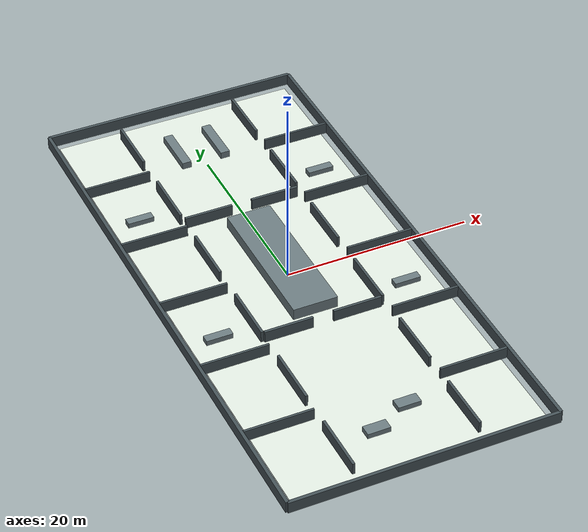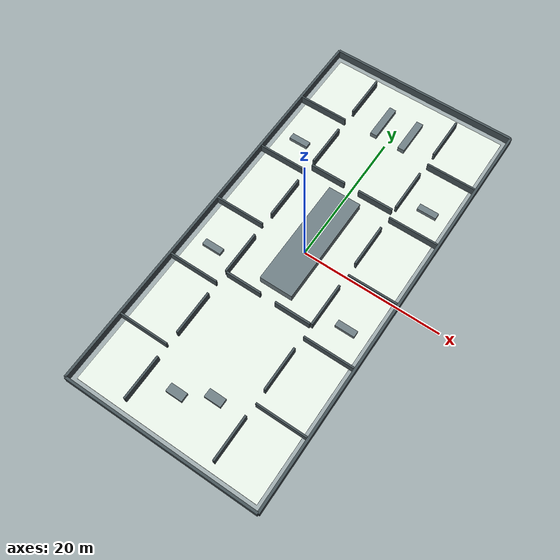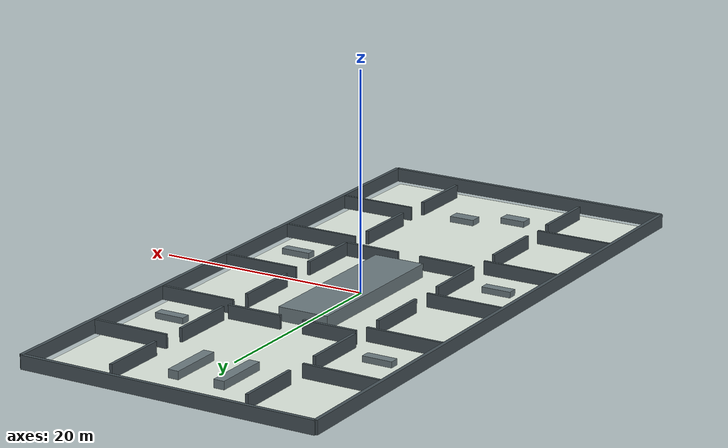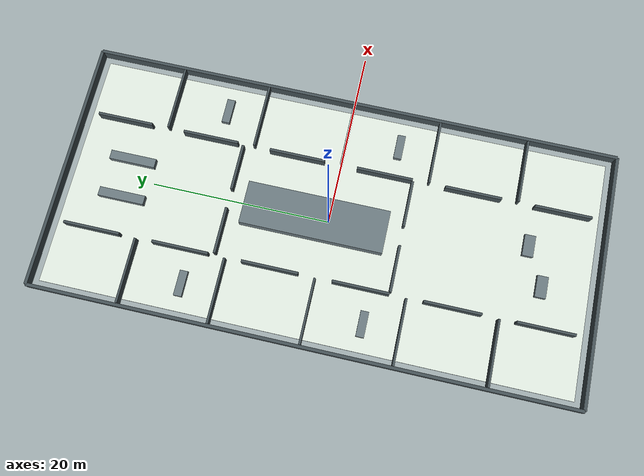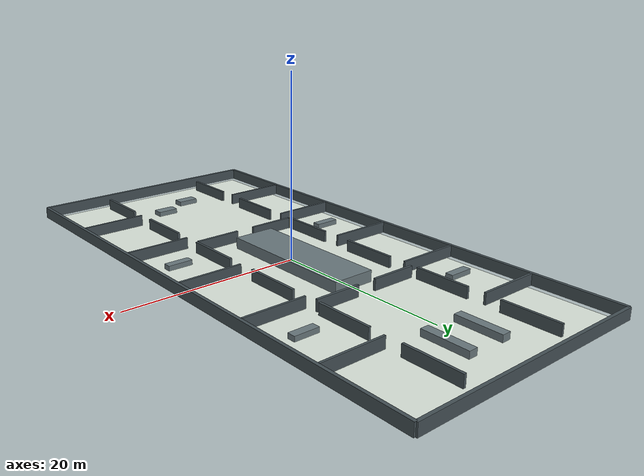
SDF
<?xml version="1.0" ?>
<sdf version="1.6">
  <world name="school_corridor">
    <gravity>0 0 -9.8</gravity>
    <scene>
      <ambient>0.65 0.65 0.65 1</ambient>
      <background>0.78 0.84 0.88 1</background>
    </scene>
    <include>
      <uri>model://sun</uri>
    </include>
    <model name="school_corridor_floor">
      <static>true</static>
      <pose>0.000 0.000 -0.025 0 0 0</pose>
      <link name="floor_link">
        <collision name="floor_collision">
          <geometry>
            <box><size>26.400 58.400 0.050</size></box>
          </geometry>
        </collision>
        <visual name="floor_visual">
          <geometry>
            <box><size>26.400 58.400 0.050</size></box>
          </geometry>
          <material><ambient>0.88 0.92 0.88 1</ambient><diffuse>0.88 0.92 0.88 1</diffuse></material>
        </visual>
      </link>
    </model>
    <model name="outer_north">
      <static>true</static>
      <pose>0.000 30.000 0.625 0 0 0</pose>
      <link name="outer_north_link">
        <collision name="outer_north_collision">
          <geometry>
            <box><size>28.000 0.350 1.250</size></box>
          </geometry>
        </collision>
        <visual name="outer_north_visual">
          <geometry>
            <box><size>28.000 0.350 1.250</size></box>
          </geometry>
          <material><ambient>0.27 0.32 0.34 1</ambient><diffuse>0.27 0.32 0.34 1</diffuse></material>
        </visual>
      </link>
    </model>
    <model name="outer_south">
      <static>true</static>
      <pose>0.000 -30.000 0.625 0 0 0</pose>
      <link name="outer_south_link">
        <collision name="outer_south_collision">
          <geometry>
            <box><size>28.000 0.350 1.250</size></box>
          </geometry>
        </collision>
        <visual name="outer_south_visual">
          <geometry>
            <box><size>28.000 0.350 1.250</size></box>
          </geometry>
          <material><ambient>0.27 0.32 0.34 1</ambient><diffuse>0.27 0.32 0.34 1</diffuse></material>
        </visual>
      </link>
    </model>
    <model name="outer_west">
      <static>true</static>
      <pose>-14.000 0.000 0.625 0 0 0</pose>
      <link name="outer_west_link">
        <collision name="outer_west_collision">
          <geometry>
            <box><size>0.350 60.000 1.250</size></box>
          </geometry>
        </collision>
        <visual name="outer_west_visual">
          <geometry>
            <box><size>0.350 60.000 1.250</size></box>
          </geometry>
          <material><ambient>0.27 0.32 0.34 1</ambient><diffuse>0.27 0.32 0.34 1</diffuse></material>
        </visual>
      </link>
    </model>
    <model name="outer_east">
      <static>true</static>
      <pose>14.000 0.000 0.625 0 0 0</pose>
      <link name="outer_east_link">
        <collision name="outer_east_collision">
          <geometry>
            <box><size>0.350 60.000 1.250</size></box>
          </geometry>
        </collision>
        <visual name="outer_east_visual">
          <geometry>
            <box><size>0.350 60.000 1.250</size></box>
          </geometry>
          <material><ambient>0.27 0.32 0.34 1</ambient><diffuse>0.27 0.32 0.34 1</diffuse></material>
        </visual>
      </link>
    </model>
    <model name="school_west_corridor_wall_1">
      <static>true</static>
      <pose>-6.500 -25.000 0.625 0 0 0</pose>
      <link name="school_west_corridor_wall_1_link">
        <collision name="school_west_corridor_wall_1_collision">
          <geometry>
            <box><size>0.280 6.300 1.250</size></box>
          </geometry>
        </collision>
        <visual name="school_west_corridor_wall_1_visual">
          <geometry>
            <box><size>0.280 6.300 1.250</size></box>
          </geometry>
          <material><ambient>0.27 0.32 0.34 1</ambient><diffuse>0.27 0.32 0.34 1</diffuse></material>
        </visual>
      </link>
    </model>
    <model name="school_west_corridor_wall_2">
      <static>true</static>
      <pose>-6.500 -15.000 0.625 0 0 0</pose>
      <link name="school_west_corridor_wall_2_link">
        <collision name="school_west_corridor_wall_2_collision">
          <geometry>
            <box><size>0.280 6.300 1.250</size></box>
          </geometry>
        </collision>
        <visual name="school_west_corridor_wall_2_visual">
          <geometry>
            <box><size>0.280 6.300 1.250</size></box>
          </geometry>
          <material><ambient>0.27 0.32 0.34 1</ambient><diffuse>0.27 0.32 0.34 1</diffuse></material>
        </visual>
      </link>
    </model>
    <model name="school_west_corridor_wall_3">
      <static>true</static>
      <pose>-6.500 -5.000 0.625 0 0 0</pose>
      <link name="school_west_corridor_wall_3_link">
        <collision name="school_west_corridor_wall_3_collision">
          <geometry>
            <box><size>0.280 6.300 1.250</size></box>
          </geometry>
        </collision>
        <visual name="school_west_corridor_wall_3_visual">
          <geometry>
            <box><size>0.280 6.300 1.250</size></box>
          </geometry>
          <material><ambient>0.27 0.32 0.34 1</ambient><diffuse>0.27 0.32 0.34 1</diffuse></material>
        </visual>
      </link>
    </model>
    <model name="school_west_corridor_wall_4">
      <static>true</static>
      <pose>-6.500 5.000 0.625 0 0 0</pose>
      <link name="school_west_corridor_wall_4_link">
        <collision name="school_west_corridor_wall_4_collision">
          <geometry>
            <box><size>0.280 6.300 1.250</size></box>
          </geometry>
        </collision>
        <visual name="school_west_corridor_wall_4_visual">
          <geometry>
            <box><size>0.280 6.300 1.250</size></box>
          </geometry>
          <material><ambient>0.27 0.32 0.34 1</ambient><diffuse>0.27 0.32 0.34 1</diffuse></material>
        </visual>
      </link>
    </model>
    <model name="school_west_corridor_wall_5">
      <static>true</static>
      <pose>-6.500 15.000 0.625 0 0 0</pose>
      <link name="school_west_corridor_wall_5_link">
        <collision name="school_west_corridor_wall_5_collision">
          <geometry>
            <box><size>0.280 6.300 1.250</size></box>
          </geometry>
        </collision>
        <visual name="school_west_corridor_wall_5_visual">
          <geometry>
            <box><size>0.280 6.300 1.250</size></box>
          </geometry>
          <material><ambient>0.27 0.32 0.34 1</ambient><diffuse>0.27 0.32 0.34 1</diffuse></material>
        </visual>
      </link>
    </model>
    <model name="school_west_corridor_wall_6">
      <static>true</static>
      <pose>-6.500 25.000 0.625 0 0 0</pose>
      <link name="school_west_corridor_wall_6_link">
        <collision name="school_west_corridor_wall_6_collision">
          <geometry>
            <box><size>0.280 6.300 1.250</size></box>
          </geometry>
        </collision>
        <visual name="school_west_corridor_wall_6_visual">
          <geometry>
            <box><size>0.280 6.300 1.250</size></box>
          </geometry>
          <material><ambient>0.27 0.32 0.34 1</ambient><diffuse>0.27 0.32 0.34 1</diffuse></material>
        </visual>
      </link>
    </model>
    <model name="school_east_corridor_wall_1">
      <static>true</static>
      <pose>6.500 -25.000 0.625 0 0 0</pose>
      <link name="school_east_corridor_wall_1_link">
        <collision name="school_east_corridor_wall_1_collision">
          <geometry>
            <box><size>0.280 6.300 1.250</size></box>
          </geometry>
        </collision>
        <visual name="school_east_corridor_wall_1_visual">
          <geometry>
            <box><size>0.280 6.300 1.250</size></box>
          </geometry>
          <material><ambient>0.27 0.32 0.34 1</ambient><diffuse>0.27 0.32 0.34 1</diffuse></material>
        </visual>
      </link>
    </model>
    <model name="school_east_corridor_wall_2">
      <static>true</static>
      <pose>6.500 -15.000 0.625 0 0 0</pose>
      <link name="school_east_corridor_wall_2_link">
        <collision name="school_east_corridor_wall_2_collision">
          <geometry>
            <box><size>0.280 6.300 1.250</size></box>
          </geometry>
        </collision>
        <visual name="school_east_corridor_wall_2_visual">
          <geometry>
            <box><size>0.280 6.300 1.250</size></box>
          </geometry>
          <material><ambient>0.27 0.32 0.34 1</ambient><diffuse>0.27 0.32 0.34 1</diffuse></material>
        </visual>
      </link>
    </model>
    <model name="school_east_corridor_wall_3">
      <static>true</static>
      <pose>6.500 -5.000 0.625 0 0 0</pose>
      <link name="school_east_corridor_wall_3_link">
        <collision name="school_east_corridor_wall_3_collision">
          <geometry>
            <box><size>0.280 6.300 1.250</size></box>
          </geometry>
        </collision>
        <visual name="school_east_corridor_wall_3_visual">
          <geometry>
            <box><size>0.280 6.300 1.250</size></box>
          </geometry>
          <material><ambient>0.27 0.32 0.34 1</ambient><diffuse>0.27 0.32 0.34 1</diffuse></material>
        </visual>
      </link>
    </model>
    <model name="school_east_corridor_wall_4">
      <static>true</static>
      <pose>6.500 5.000 0.625 0 0 0</pose>
      <link name="school_east_corridor_wall_4_link">
        <collision name="school_east_corridor_wall_4_collision">
          <geometry>
            <box><size>0.280 6.300 1.250</size></box>
          </geometry>
        </collision>
        <visual name="school_east_corridor_wall_4_visual">
          <geometry>
            <box><size>0.280 6.300 1.250</size></box>
          </geometry>
          <material><ambient>0.27 0.32 0.34 1</ambient><diffuse>0.27 0.32 0.34 1</diffuse></material>
        </visual>
      </link>
    </model>
    <model name="school_east_corridor_wall_5">
      <static>true</static>
      <pose>6.500 15.000 0.625 0 0 0</pose>
      <link name="school_east_corridor_wall_5_link">
        <collision name="school_east_corridor_wall_5_collision">
          <geometry>
            <box><size>0.280 6.300 1.250</size></box>
          </geometry>
        </collision>
        <visual name="school_east_corridor_wall_5_visual">
          <geometry>
            <box><size>0.280 6.300 1.250</size></box>
          </geometry>
          <material><ambient>0.27 0.32 0.34 1</ambient><diffuse>0.27 0.32 0.34 1</diffuse></material>
        </visual>
      </link>
    </model>
    <model name="school_east_corridor_wall_6">
      <static>true</static>
      <pose>6.500 25.000 0.625 0 0 0</pose>
      <link name="school_east_corridor_wall_6_link">
        <collision name="school_east_corridor_wall_6_collision">
          <geometry>
            <box><size>0.280 6.300 1.250</size></box>
          </geometry>
        </collision>
        <visual name="school_east_corridor_wall_6_visual">
          <geometry>
            <box><size>0.280 6.300 1.250</size></box>
          </geometry>
          <material><ambient>0.27 0.32 0.34 1</ambient><diffuse>0.27 0.32 0.34 1</diffuse></material>
        </visual>
      </link>
    </model>
    <model name="school_west_room_divider_1">
      <static>true</static>
      <pose>-10.200 -20.000 0.625 0 0 0</pose>
      <link name="school_west_room_divider_1_link">
        <collision name="school_west_room_divider_1_collision">
          <geometry>
            <box><size>7.200 0.240 1.250</size></box>
          </geometry>
        </collision>
        <visual name="school_west_room_divider_1_visual">
          <geometry>
            <box><size>7.200 0.240 1.250</size></box>
          </geometry>
          <material><ambient>0.27 0.32 0.34 1</ambient><diffuse>0.27 0.32 0.34 1</diffuse></material>
        </visual>
      </link>
    </model>
    <model name="school_west_room_divider_2">
      <static>true</static>
      <pose>-10.200 -10.000 0.625 0 0 0</pose>
      <link name="school_west_room_divider_2_link">
        <collision name="school_west_room_divider_2_collision">
          <geometry>
            <box><size>7.200 0.240 1.250</size></box>
          </geometry>
        </collision>
        <visual name="school_west_room_divider_2_visual">
          <geometry>
            <box><size>7.200 0.240 1.250</size></box>
          </geometry>
          <material><ambient>0.27 0.32 0.34 1</ambient><diffuse>0.27 0.32 0.34 1</diffuse></material>
        </visual>
      </link>
    </model>
    <model name="school_west_room_divider_3">
      <static>true</static>
      <pose>-10.200 0.000 0.625 0 0 0</pose>
      <link name="school_west_room_divider_3_link">
        <collision name="school_west_room_divider_3_collision">
          <geometry>
            <box><size>7.200 0.240 1.250</size></box>
          </geometry>
        </collision>
        <visual name="school_west_room_divider_3_visual">
          <geometry>
            <box><size>7.200 0.240 1.250</size></box>
          </geometry>
          <material><ambient>0.27 0.32 0.34 1</ambient><diffuse>0.27 0.32 0.34 1</diffuse></material>
        </visual>
      </link>
    </model>
    <model name="school_west_room_divider_4">
      <static>true</static>
      <pose>-10.200 10.000 0.625 0 0 0</pose>
      <link name="school_west_room_divider_4_link">
        <collision name="school_west_room_divider_4_collision">
          <geometry>
            <box><size>7.200 0.240 1.250</size></box>
          </geometry>
        </collision>
        <visual name="school_west_room_divider_4_visual">
          <geometry>
            <box><size>7.200 0.240 1.250</size></box>
          </geometry>
          <material><ambient>0.27 0.32 0.34 1</ambient><diffuse>0.27 0.32 0.34 1</diffuse></material>
        </visual>
      </link>
    </model>
    <model name="school_west_room_divider_5">
      <static>true</static>
      <pose>-10.200 20.000 0.625 0 0 0</pose>
      <link name="school_west_room_divider_5_link">
        <collision name="school_west_room_divider_5_collision">
          <geometry>
            <box><size>7.200 0.240 1.250</size></box>
          </geometry>
        </collision>
        <visual name="school_west_room_divider_5_visual">
          <geometry>
            <box><size>7.200 0.240 1.250</size></box>
          </geometry>
          <material><ambient>0.27 0.32 0.34 1</ambient><diffuse>0.27 0.32 0.34 1</diffuse></material>
        </visual>
      </link>
    </model>
    <model name="school_east_room_divider_1">
      <static>true</static>
      <pose>10.200 -20.000 0.625 0 0 0</pose>
      <link name="school_east_room_divider_1_link">
        <collision name="school_east_room_divider_1_collision">
          <geometry>
            <box><size>7.200 0.240 1.250</size></box>
          </geometry>
        </collision>
        <visual name="school_east_room_divider_1_visual">
          <geometry>
            <box><size>7.200 0.240 1.250</size></box>
          </geometry>
          <material><ambient>0.27 0.32 0.34 1</ambient><diffuse>0.27 0.32 0.34 1</diffuse></material>
        </visual>
      </link>
    </model>
    <model name="school_east_room_divider_2">
      <static>true</static>
      <pose>10.200 -10.000 0.625 0 0 0</pose>
      <link name="school_east_room_divider_2_link">
        <collision name="school_east_room_divider_2_collision">
          <geometry>
            <box><size>7.200 0.240 1.250</size></box>
          </geometry>
        </collision>
        <visual name="school_east_room_divider_2_visual">
          <geometry>
            <box><size>7.200 0.240 1.250</size></box>
          </geometry>
          <material><ambient>0.27 0.32 0.34 1</ambient><diffuse>0.27 0.32 0.34 1</diffuse></material>
        </visual>
      </link>
    </model>
    <model name="school_east_room_divider_3">
      <static>true</static>
      <pose>10.200 0.000 0.625 0 0 0</pose>
      <link name="school_east_room_divider_3_link">
        <collision name="school_east_room_divider_3_collision">
          <geometry>
            <box><size>7.200 0.240 1.250</size></box>
          </geometry>
        </collision>
        <visual name="school_east_room_divider_3_visual">
          <geometry>
            <box><size>7.200 0.240 1.250</size></box>
          </geometry>
          <material><ambient>0.27 0.32 0.34 1</ambient><diffuse>0.27 0.32 0.34 1</diffuse></material>
        </visual>
      </link>
    </model>
    <model name="school_east_room_divider_4">
      <static>true</static>
      <pose>10.200 10.000 0.625 0 0 0</pose>
      <link name="school_east_room_divider_4_link">
        <collision name="school_east_room_divider_4_collision">
          <geometry>
            <box><size>7.200 0.240 1.250</size></box>
          </geometry>
        </collision>
        <visual name="school_east_room_divider_4_visual">
          <geometry>
            <box><size>7.200 0.240 1.250</size></box>
          </geometry>
          <material><ambient>0.27 0.32 0.34 1</ambient><diffuse>0.27 0.32 0.34 1</diffuse></material>
        </visual>
      </link>
    </model>
    <model name="school_east_room_divider_5">
      <static>true</static>
      <pose>10.200 20.000 0.625 0 0 0</pose>
      <link name="school_east_room_divider_5_link">
        <collision name="school_east_room_divider_5_collision">
          <geometry>
            <box><size>7.200 0.240 1.250</size></box>
          </geometry>
        </collision>
        <visual name="school_east_room_divider_5_visual">
          <geometry>
            <box><size>7.200 0.240 1.250</size></box>
          </geometry>
          <material><ambient>0.27 0.32 0.34 1</ambient><diffuse>0.27 0.32 0.34 1</diffuse></material>
        </visual>
      </link>
    </model>
    <model name="school_central_service_core">
      <static>true</static>
      <pose>0.000 1.500 0.625 0 0 0</pose>
      <link name="school_central_service_core_link">
        <collision name="school_central_service_core_collision">
          <geometry>
            <box><size>4.800 16.000 1.250</size></box>
          </geometry>
        </collision>
        <visual name="school_central_service_core_visual">
          <geometry>
            <box><size>4.800 16.000 1.250</size></box>
          </geometry>
          <material><ambient>0.42 0.48 0.50 1</ambient><diffuse>0.42 0.48 0.50 1</diffuse></material>
        </visual>
      </link>
    </model>
    <model name="school_service_wall_south_w">
      <static>true</static>
      <pose>-3.700 -8.200 0.625 0 0 0</pose>
      <link name="school_service_wall_south_w_link">
        <collision name="school_service_wall_south_w_collision">
          <geometry>
            <box><size>5.200 0.280 1.250</size></box>
          </geometry>
        </collision>
        <visual name="school_service_wall_south_w_visual">
          <geometry>
            <box><size>5.200 0.280 1.250</size></box>
          </geometry>
          <material><ambient>0.27 0.32 0.34 1</ambient><diffuse>0.27 0.32 0.34 1</diffuse></material>
        </visual>
      </link>
    </model>
    <model name="school_service_wall_south_e">
      <static>true</static>
      <pose>3.700 -8.200 0.625 0 0 0</pose>
      <link name="school_service_wall_south_e_link">
        <collision name="school_service_wall_south_e_collision">
          <geometry>
            <box><size>5.200 0.280 1.250</size></box>
          </geometry>
        </collision>
        <visual name="school_service_wall_south_e_visual">
          <geometry>
            <box><size>5.200 0.280 1.250</size></box>
          </geometry>
          <material><ambient>0.27 0.32 0.34 1</ambient><diffuse>0.27 0.32 0.34 1</diffuse></material>
        </visual>
      </link>
    </model>
    <model name="school_service_wall_north_w">
      <static>true</static>
      <pose>-3.700 11.200 0.625 0 0 0</pose>
      <link name="school_service_wall_north_w_link">
        <collision name="school_service_wall_north_w_collision">
          <geometry>
            <box><size>5.200 0.280 1.250</size></box>
          </geometry>
        </collision>
        <visual name="school_service_wall_north_w_visual">
          <geometry>
            <box><size>5.200 0.280 1.250</size></box>
          </geometry>
          <material><ambient>0.27 0.32 0.34 1</ambient><diffuse>0.27 0.32 0.34 1</diffuse></material>
        </visual>
      </link>
    </model>
    <model name="school_service_wall_north_e">
      <static>true</static>
      <pose>3.700 11.200 0.625 0 0 0</pose>
      <link name="school_service_wall_north_e_link">
        <collision name="school_service_wall_north_e_collision">
          <geometry>
            <box><size>5.200 0.280 1.250</size></box>
          </geometry>
        </collision>
        <visual name="school_service_wall_north_e_visual">
          <geometry>
            <box><size>5.200 0.280 1.250</size></box>
          </geometry>
          <material><ambient>0.27 0.32 0.34 1</ambient><diffuse>0.27 0.32 0.34 1</diffuse></material>
        </visual>
      </link>
    </model>
    <model name="school_library_stack_w">
      <static>true</static>
      <pose>-2.200 23.000 0.375 0 0 0</pose>
      <link name="school_library_stack_w_link">
        <collision name="school_library_stack_w_collision">
          <geometry>
            <box><size>1.000 5.200 0.750</size></box>
          </geometry>
        </collision>
        <visual name="school_library_stack_w_visual">
          <geometry>
            <box><size>1.000 5.200 0.750</size></box>
          </geometry>
          <material><ambient>0.42 0.48 0.50 1</ambient><diffuse>0.42 0.48 0.50 1</diffuse></material>
        </visual>
      </link>
    </model>
    <model name="school_library_stack_e">
      <static>true</static>
      <pose>2.200 23.000 0.375 0 0 0</pose>
      <link name="school_library_stack_e_link">
        <collision name="school_library_stack_e_collision">
          <geometry>
            <box><size>1.000 5.200 0.750</size></box>
          </geometry>
        </collision>
        <visual name="school_library_stack_e_visual">
          <geometry>
            <box><size>1.000 5.200 0.750</size></box>
          </geometry>
          <material><ambient>0.42 0.48 0.50 1</ambient><diffuse>0.42 0.48 0.50 1</diffuse></material>
        </visual>
      </link>
    </model>
    <model name="school_cafe_table_w">
      <static>true</static>
      <pose>-2.100 -24.000 0.275 0 0 0</pose>
      <link name="school_cafe_table_w_link">
        <collision name="school_cafe_table_w_collision">
          <geometry>
            <box><size>2.400 1.200 0.550</size></box>
          </geometry>
        </collision>
        <visual name="school_cafe_table_w_visual">
          <geometry>
            <box><size>2.400 1.200 0.550</size></box>
          </geometry>
          <material><ambient>0.42 0.48 0.50 1</ambient><diffuse>0.42 0.48 0.50 1</diffuse></material>
        </visual>
      </link>
    </model>
    <model name="school_cafe_table_e">
      <static>true</static>
      <pose>2.100 -22.000 0.275 0 0 0</pose>
      <link name="school_cafe_table_e_link">
        <collision name="school_cafe_table_e_collision">
          <geometry>
            <box><size>2.400 1.200 0.550</size></box>
          </geometry>
        </collision>
        <visual name="school_cafe_table_e_visual">
          <geometry>
            <box><size>2.400 1.200 0.550</size></box>
          </geometry>
          <material><ambient>0.42 0.48 0.50 1</ambient><diffuse>0.42 0.48 0.50 1</diffuse></material>
        </visual>
      </link>
    </model>
    <model name="school_west_teacher_desk_a">
      <static>true</static>
      <pose>-10.200 14.000 0.275 0 0 0</pose>
      <link name="school_west_teacher_desk_a_link">
        <collision name="school_west_teacher_desk_a_collision">
          <geometry>
            <box><size>2.800 0.900 0.550</size></box>
          </geometry>
        </collision>
        <visual name="school_west_teacher_desk_a_visual">
          <geometry>
            <box><size>2.800 0.900 0.550</size></box>
          </geometry>
          <material><ambient>0.42 0.48 0.50 1</ambient><diffuse>0.42 0.48 0.50 1</diffuse></material>
        </visual>
      </link>
    </model>
    <model name="school_west_teacher_desk_b">
      <static>true</static>
      <pose>-10.200 -6.000 0.275 0 0 0</pose>
      <link name="school_west_teacher_desk_b_link">
        <collision name="school_west_teacher_desk_b_collision">
          <geometry>
            <box><size>2.800 0.900 0.550</size></box>
          </geometry>
        </collision>
        <visual name="school_west_teacher_desk_b_visual">
          <geometry>
            <box><size>2.800 0.900 0.550</size></box>
          </geometry>
          <material><ambient>0.42 0.48 0.50 1</ambient><diffuse>0.42 0.48 0.50 1</diffuse></material>
        </visual>
      </link>
    </model>
    <model name="school_east_teacher_desk_a">
      <static>true</static>
      <pose>10.200 14.000 0.275 0 0 0</pose>
      <link name="school_east_teacher_desk_a_link">
        <collision name="school_east_teacher_desk_a_collision">
          <geometry>
            <box><size>2.800 0.900 0.550</size></box>
          </geometry>
        </collision>
        <visual name="school_east_teacher_desk_a_visual">
          <geometry>
            <box><size>2.800 0.900 0.550</size></box>
          </geometry>
          <material><ambient>0.42 0.48 0.50 1</ambient><diffuse>0.42 0.48 0.50 1</diffuse></material>
        </visual>
      </link>
    </model>
    <model name="school_east_teacher_desk_b">
      <static>true</static>
      <pose>10.200 -6.000 0.275 0 0 0</pose>
      <link name="school_east_teacher_desk_b_link">
        <collision name="school_east_teacher_desk_b_collision">
          <geometry>
            <box><size>2.800 0.900 0.550</size></box>
          </geometry>
        </collision>
        <visual name="school_east_teacher_desk_b_visual">
          <geometry>
            <box><size>2.800 0.900 0.550</size></box>
          </geometry>
          <material><ambient>0.42 0.48 0.50 1</ambient><diffuse>0.42 0.48 0.50 1</diffuse></material>
        </visual>
      </link>
    </model>
  </world>
</sdf>
